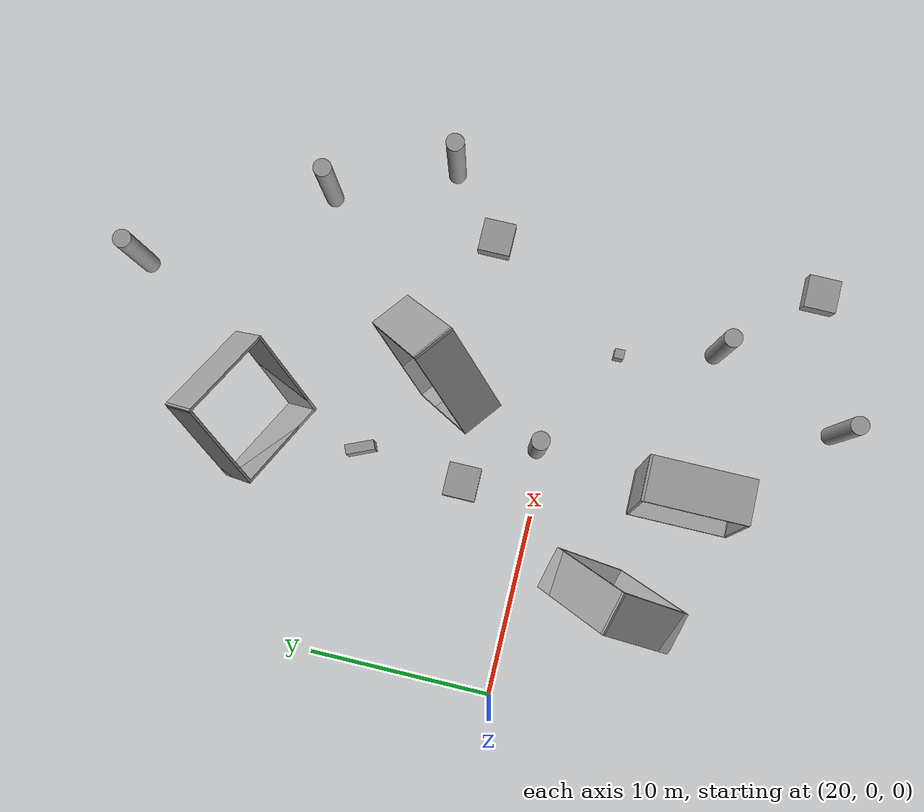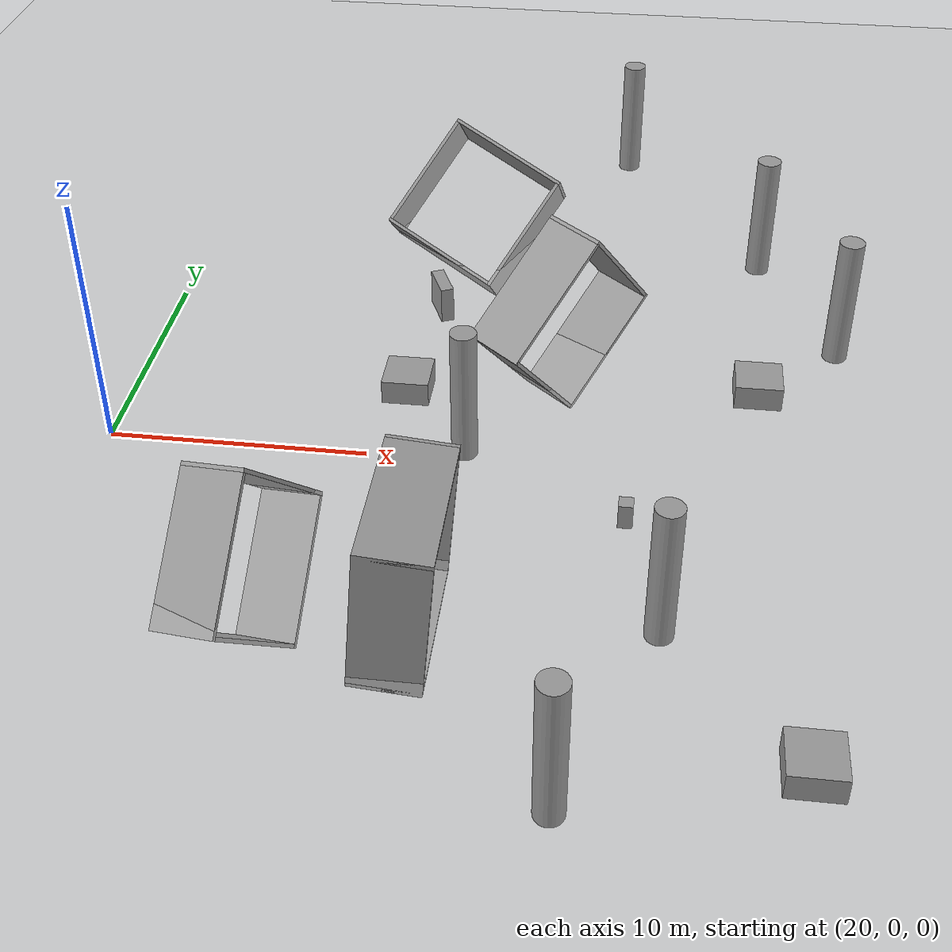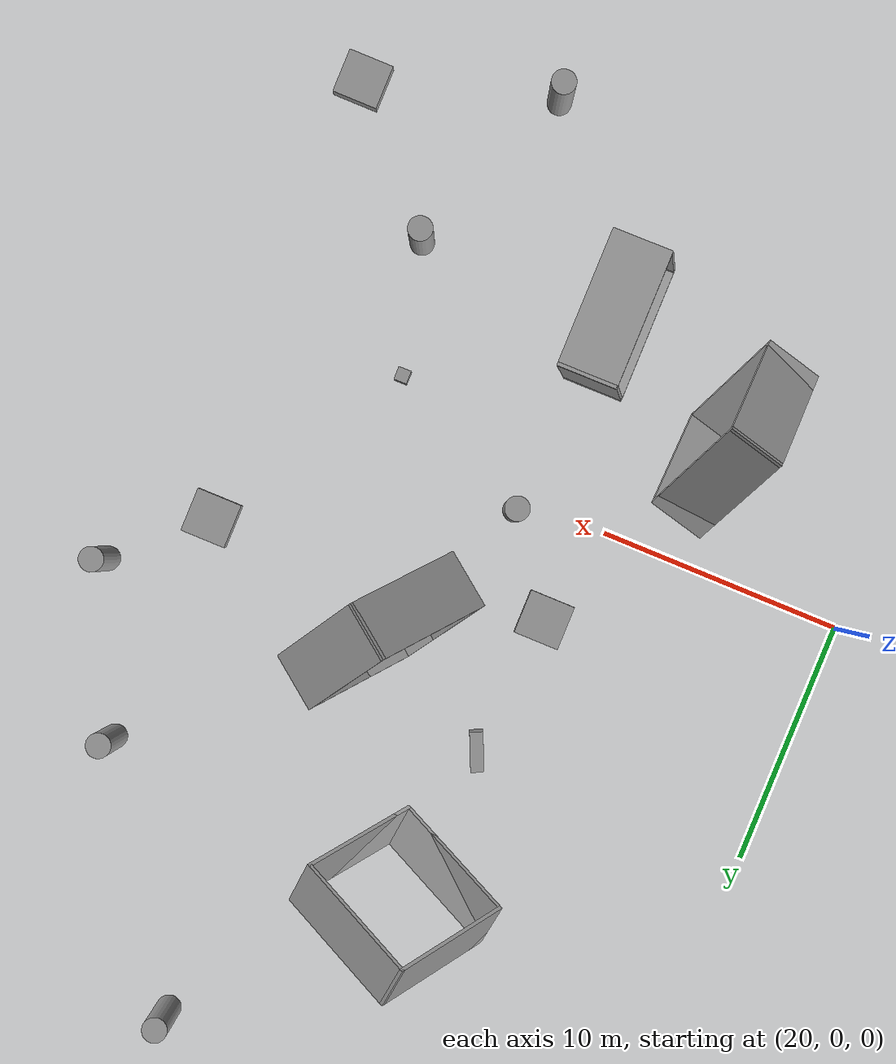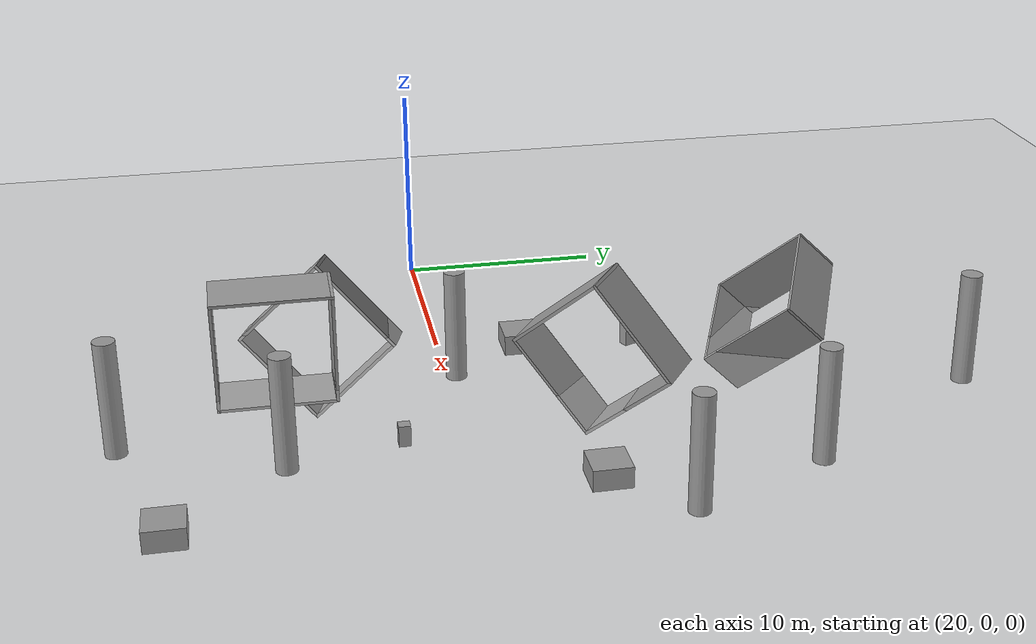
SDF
<sdf version="1.6">
 <world name="default">
  <model name="ground_plane">
   <static>1</static>
   <link name="link">
    <collision name="collision">
     <geometry><plane><normal>0 0 1</normal><size>100 100</size></plane></geometry>
     <surface><friction><ode><mu>100</mu><mu2>50</mu2></ode></friction></surface>
    </collision>
    <visual name="visual">
     <cast_shadows>0</cast_shadows>
     <geometry><plane><normal>0 0 1</normal><size>100 100</size></plane></geometry>
     <material>
      <script><uri>file://media/materials/scripts/gazebo.material</uri><name>Gazebo/Grey</name></script>
     </material>
    </visual>
   </link>
  </model>
  <model name="unit_box_clone_clone_1">
   <pose>31.4556 9.98516 0.788235 -0 -0 -2.72542</pose>
   <link name="link">
    <inertial>
     <mass>1</mass>
     <inertia>
      <ixx>0.166667</ixx>
      <ixy>0</ixy>
      <ixz>0</ixz>
      <iyy>0.166667</iyy>
      <iyz>0</iyz>
      <izz>0.166667</izz>
     </inertia>
    </inertial>
    <collision name="collision"><geometry><box><size>0.539862 1.60938 1.57647</size></box></geometry></collision>
    <visual name="visual">
     <geometry><box><size>0.539862 1.60938 1.57647</size></box></geometry>
     <material>
      <script><name>Gazebo/Grey</name><uri>file://media/materials/scripts/gazebo.material</uri></script>
     </material>
    </visual>
   </link>
  </model>
  <model name="vRoom_clone_3_clone_clone_9">
   <link name="Wall_0">
    <pose>-2.8 -0 -1e-06 -0 -0 -1.5708</pose>
    <velocity_decay><linear>0</linear><angular>0</angular></velocity_decay>
    <visual name="Wall_0_Visual">
     <pose>0 0 1.25 0 -0 0</pose>
     <geometry><box><size>5.75 0.15 2.5</size></box></geometry>
     <material>
      <script><uri>file://media/materials/scripts/gazebo.material</uri><name>Gazebo/Grey</name></script>
      <ambient>1 1 1 1</ambient>
     </material>
    </visual>
    <collision name="Wall_0_Collision">
     <pose>0 0 1.25 0 -0 0</pose>
     <geometry><box><size>5.75 0.15 2.5</size></box></geometry>
     <surface>
      <friction>
       <ode><mu>1</mu><mu2>1</mu2><fdir1>0 0 0</fdir1><slip1>0</slip1><slip2>0</slip2></ode>
       <torsional>
        <coefficient>1</coefficient>
        <patch_radius>0</patch_radius>
        <surface_radius>0</surface_radius>
        <use_patch_radius>1</use_patch_radius>
        <ode><slip>0</slip></ode>
       </torsional>
      </friction>
      <bounce><restitution_coefficient>0</restitution_coefficient><threshold>1e+06</threshold></bounce>
      <contact>
       <collide_without_contact>0</collide_without_contact>
       <collide_without_contact_bitmask>1</collide_without_contact_bitmask>
       <collide_bitmask>1</collide_bitmask>
       <ode>
        <soft_cfm>0</soft_cfm>
        <soft_erp>0.2</soft_erp>
        <kp>1e+13</kp>
        <kd>1</kd>
        <max_vel>0.01</max_vel>
        <min_depth>0</min_depth>
       </ode>
       <bullet>
        <split_impulse>1</split_impulse>
        <split_impulse_penetration_threshold>-0.01</split_impulse_penetration_threshold>
        <soft_cfm>0</soft_cfm>
        <soft_erp>0.2</soft_erp>
        <kp>1e+13</kp>
        <kd>1</kd>
       </bullet>
      </contact>
     </surface>
    </collision>
   </link>
   <link name="Wall_1">
    <pose>2e-06 -2.8 2e-06 0 -0 0</pose>
    <velocity_decay><linear>0</linear><angular>0</angular></velocity_decay>
    <visual name="Wall_1_Visual">
     <pose>0 0 1.25 0 -0 0</pose>
     <geometry><box><size>5.75 0.15 2.5</size></box></geometry>
     <material>
      <script><uri>file://media/materials/scripts/gazebo.material</uri><name>Gazebo/Grey</name></script>
      <ambient>1 1 1 1</ambient>
     </material>
    </visual>
    <collision name="Wall_1_Collision">
     <pose>0 0 1.25 0 -0 0</pose>
     <geometry><box><size>5.75 0.15 2.5</size></box></geometry>
     <surface>
      <friction>
       <ode><mu>1</mu><mu2>1</mu2><fdir1>0 0 0</fdir1><slip1>0</slip1><slip2>0</slip2></ode>
       <torsional>
        <coefficient>1</coefficient>
        <patch_radius>0</patch_radius>
        <surface_radius>0</surface_radius>
        <use_patch_radius>1</use_patch_radius>
        <ode><slip>0</slip></ode>
       </torsional>
      </friction>
      <bounce><restitution_coefficient>0</restitution_coefficient><threshold>1e+06</threshold></bounce>
      <contact>
       <collide_without_contact>0</collide_without_contact>
       <collide_without_contact_bitmask>1</collide_without_contact_bitmask>
       <collide_bitmask>1</collide_bitmask>
       <ode>
        <soft_cfm>0</soft_cfm>
        <soft_erp>0.2</soft_erp>
        <kp>1e+13</kp>
        <kd>1</kd>
        <max_vel>0.01</max_vel>
        <min_depth>0</min_depth>
       </ode>
       <bullet>
        <split_impulse>1</split_impulse>
        <split_impulse_penetration_threshold>-0.01</split_impulse_penetration_threshold>
        <soft_cfm>0</soft_cfm>
        <soft_erp>0.2</soft_erp>
        <kp>1e+13</kp>
        <kd>1</kd>
       </bullet>
      </contact>
     </surface>
    </collision>
   </link>
   <link name="Wall_2">
    <pose>2.8 0 1e-06 0 -0 1.5708</pose>
    <velocity_decay><linear>0</linear><angular>0</angular></velocity_decay>
    <visual name="Wall_2_Visual">
     <pose>0 0 1.25 0 -0 0</pose>
     <geometry><box><size>5.75 0.15 2.5</size></box></geometry>
     <material>
      <script><uri>file://media/materials/scripts/gazebo.material</uri><name>Gazebo/Grey</name></script>
      <ambient>1 1 1 1</ambient>
     </material>
    </visual>
    <collision name="Wall_2_Collision">
     <pose>0 0 1.25 0 -0 0</pose>
     <geometry><box><size>5.75 0.15 2.5</size></box></geometry>
     <surface>
      <friction>
       <ode><mu>1</mu><mu2>1</mu2><fdir1>0 0 0</fdir1><slip1>0</slip1><slip2>0</slip2></ode>
       <torsional>
        <coefficient>1</coefficient>
        <patch_radius>0</patch_radius>
        <surface_radius>0</surface_radius>
        <use_patch_radius>1</use_patch_radius>
        <ode><slip>0</slip></ode>
       </torsional>
      </friction>
      <bounce><restitution_coefficient>0</restitution_coefficient><threshold>1e+06</threshold></bounce>
      <contact>
       <collide_without_contact>0</collide_without_contact>
       <collide_without_contact_bitmask>1</collide_without_contact_bitmask>
       <collide_bitmask>1</collide_bitmask>
       <ode>
        <soft_cfm>0</soft_cfm>
        <soft_erp>0.2</soft_erp>
        <kp>1e+13</kp>
        <kd>1</kd>
        <max_vel>0.01</max_vel>
        <min_depth>0</min_depth>
       </ode>
       <bullet>
        <split_impulse>1</split_impulse>
        <split_impulse_penetration_threshold>-0.01</split_impulse_penetration_threshold>
        <soft_cfm>0</soft_cfm>
        <soft_erp>0.2</soft_erp>
        <kp>1e+13</kp>
        <kd>1</kd>
       </bullet>
      </contact>
     </surface>
    </collision>
   </link>
   <link name="Wall_3">
    <pose>-2e-06 2.8 -2e-06 0 -0 3.14159</pose>
    <velocity_decay><linear>0</linear><angular>0</angular></velocity_decay>
    <visual name="Wall_3_Visual">
     <pose>0 0 1.25 0 -0 0</pose>
     <geometry><box><size>5.75 0.15 2.5</size></box></geometry>
     <material>
      <script><uri>file://media/materials/scripts/gazebo.material</uri><name>Gazebo/Grey</name></script>
      <ambient>1 1 1 1</ambient>
     </material>
    </visual>
    <collision name="Wall_3_Collision">
     <pose>0 0 1.25 0 -0 0</pose>
     <geometry><box><size>5.75 0.15 2.5</size></box></geometry>
     <surface>
      <friction>
       <ode><mu>1</mu><mu2>1</mu2><fdir1>0 0 0</fdir1><slip1>0</slip1><slip2>0</slip2></ode>
       <torsional>
        <coefficient>1</coefficient>
        <patch_radius>0</patch_radius>
        <surface_radius>0</surface_radius>
        <use_patch_radius>1</use_patch_radius>
        <ode><slip>0</slip></ode>
       </torsional>
      </friction>
      <bounce><restitution_coefficient>0</restitution_coefficient><threshold>1e+06</threshold></bounce>
      <contact>
       <collide_without_contact>0</collide_without_contact>
       <collide_without_contact_bitmask>1</collide_without_contact_bitmask>
       <collide_bitmask>1</collide_bitmask>
       <ode>
        <soft_cfm>0</soft_cfm>
        <soft_erp>0.2</soft_erp>
        <kp>1e+13</kp>
        <kd>1</kd>
        <max_vel>0.01</max_vel>
        <min_depth>0</min_depth>
       </ode>
       <bullet>
        <split_impulse>1</split_impulse>
        <split_impulse_penetration_threshold>-0.01</split_impulse_penetration_threshold>
        <soft_cfm>0</soft_cfm>
        <soft_erp>0.2</soft_erp>
        <kp>1e+13</kp>
        <kd>1</kd>
       </bullet>
      </contact>
     </surface>
    </collision>
   </link>
   <static>1</static>
   <pose>34.1246 -8.07118 2.16038 4e-06 -1.47998 -7e-06</pose>
  </model>
  <model name="vRoom_clone_3_clone_clone_9_clone">
   <link name="Wall_0">
    <pose>-2.8 -0 -1e-06 -0 -0 -1.5708</pose>
    <velocity_decay><linear>0</linear><angular>0</angular></velocity_decay>
    <visual name="Wall_0_Visual">
     <pose>0 0 1.25 0 -0 0</pose>
     <geometry><box><size>5.75 0.15 2.5</size></box></geometry>
     <material>
      <script><uri>file://media/materials/scripts/gazebo.material</uri><name>Gazebo/Grey</name></script>
      <ambient>1 1 1 1</ambient>
     </material>
    </visual>
    <collision name="Wall_0_Collision">
     <pose>0 0 1.25 0 -0 0</pose>
     <geometry><box><size>5.75 0.15 2.5</size></box></geometry>
     <surface>
      <friction>
       <ode><mu>1</mu><mu2>1</mu2><fdir1>0 0 0</fdir1><slip1>0</slip1><slip2>0</slip2></ode>
       <torsional>
        <coefficient>1</coefficient>
        <patch_radius>0</patch_radius>
        <surface_radius>0</surface_radius>
        <use_patch_radius>1</use_patch_radius>
        <ode><slip>0</slip></ode>
       </torsional>
      </friction>
      <bounce><restitution_coefficient>0</restitution_coefficient><threshold>1e+06</threshold></bounce>
      <contact>
       <collide_without_contact>0</collide_without_contact>
       <collide_without_contact_bitmask>1</collide_without_contact_bitmask>
       <collide_bitmask>1</collide_bitmask>
       <ode>
        <soft_cfm>0</soft_cfm>
        <soft_erp>0.2</soft_erp>
        <kp>1e+13</kp>
        <kd>1</kd>
        <max_vel>0.01</max_vel>
        <min_depth>0</min_depth>
       </ode>
       <bullet>
        <split_impulse>1</split_impulse>
        <split_impulse_penetration_threshold>-0.01</split_impulse_penetration_threshold>
        <soft_cfm>0</soft_cfm>
        <soft_erp>0.2</soft_erp>
        <kp>1e+13</kp>
        <kd>1</kd>
       </bullet>
      </contact>
     </surface>
    </collision>
   </link>
   <link name="Wall_1">
    <pose>2e-06 -2.8 2e-06 0 -0 0</pose>
    <velocity_decay><linear>0</linear><angular>0</angular></velocity_decay>
    <visual name="Wall_1_Visual">
     <pose>0 0 1.25 0 -0 0</pose>
     <geometry><box><size>5.75 0.15 2.5</size></box></geometry>
     <material>
      <script><uri>file://media/materials/scripts/gazebo.material</uri><name>Gazebo/Grey</name></script>
      <ambient>1 1 1 1</ambient>
     </material>
    </visual>
    <collision name="Wall_1_Collision">
     <pose>0 0 1.25 0 -0 0</pose>
     <geometry><box><size>5.75 0.15 2.5</size></box></geometry>
     <surface>
      <friction>
       <ode><mu>1</mu><mu2>1</mu2><fdir1>0 0 0</fdir1><slip1>0</slip1><slip2>0</slip2></ode>
       <torsional>
        <coefficient>1</coefficient>
        <patch_radius>0</patch_radius>
        <surface_radius>0</surface_radius>
        <use_patch_radius>1</use_patch_radius>
        <ode><slip>0</slip></ode>
       </torsional>
      </friction>
      <bounce><restitution_coefficient>0</restitution_coefficient><threshold>1e+06</threshold></bounce>
      <contact>
       <collide_without_contact>0</collide_without_contact>
       <collide_without_contact_bitmask>1</collide_without_contact_bitmask>
       <collide_bitmask>1</collide_bitmask>
       <ode>
        <soft_cfm>0</soft_cfm>
        <soft_erp>0.2</soft_erp>
        <kp>1e+13</kp>
        <kd>1</kd>
        <max_vel>0.01</max_vel>
        <min_depth>0</min_depth>
       </ode>
       <bullet>
        <split_impulse>1</split_impulse>
        <split_impulse_penetration_threshold>-0.01</split_impulse_penetration_threshold>
        <soft_cfm>0</soft_cfm>
        <soft_erp>0.2</soft_erp>
        <kp>1e+13</kp>
        <kd>1</kd>
       </bullet>
      </contact>
     </surface>
    </collision>
   </link>
   <link name="Wall_2">
    <pose>2.8 0 1e-06 0 -0 1.5708</pose>
    <velocity_decay><linear>0</linear><angular>0</angular></velocity_decay>
    <visual name="Wall_2_Visual">
     <pose>0 0 1.25 0 -0 0</pose>
     <geometry><box><size>5.75 0.15 2.5</size></box></geometry>
     <material>
      <script><uri>file://media/materials/scripts/gazebo.material</uri><name>Gazebo/Grey</name></script>
      <ambient>1 1 1 1</ambient>
     </material>
    </visual>
    <collision name="Wall_2_Collision">
     <pose>0 0 1.25 0 -0 0</pose>
     <geometry><box><size>5.75 0.15 2.5</size></box></geometry>
     <surface>
      <friction>
       <ode><mu>1</mu><mu2>1</mu2><fdir1>0 0 0</fdir1><slip1>0</slip1><slip2>0</slip2></ode>
       <torsional>
        <coefficient>1</coefficient>
        <patch_radius>0</patch_radius>
        <surface_radius>0</surface_radius>
        <use_patch_radius>1</use_patch_radius>
        <ode><slip>0</slip></ode>
       </torsional>
      </friction>
      <bounce><restitution_coefficient>0</restitution_coefficient><threshold>1e+06</threshold></bounce>
      <contact>
       <collide_without_contact>0</collide_without_contact>
       <collide_without_contact_bitmask>1</collide_without_contact_bitmask>
       <collide_bitmask>1</collide_bitmask>
       <ode>
        <soft_cfm>0</soft_cfm>
        <soft_erp>0.2</soft_erp>
        <kp>1e+13</kp>
        <kd>1</kd>
        <max_vel>0.01</max_vel>
        <min_depth>0</min_depth>
       </ode>
       <bullet>
        <split_impulse>1</split_impulse>
        <split_impulse_penetration_threshold>-0.01</split_impulse_penetration_threshold>
        <soft_cfm>0</soft_cfm>
        <soft_erp>0.2</soft_erp>
        <kp>1e+13</kp>
        <kd>1</kd>
       </bullet>
      </contact>
     </surface>
    </collision>
   </link>
   <link name="Wall_3">
    <pose>-2e-06 2.8 -2e-06 0 -0 3.14159</pose>
    <velocity_decay><linear>0</linear><angular>0</angular></velocity_decay>
    <visual name="Wall_3_Visual">
     <pose>0 0 1.25 0 -0 0</pose>
     <geometry><box><size>5.75 0.15 2.5</size></box></geometry>
     <material>
      <script><uri>file://media/materials/scripts/gazebo.material</uri><name>Gazebo/Grey</name></script>
      <ambient>1 1 1 1</ambient>
     </material>
    </visual>
    <collision name="Wall_3_Collision">
     <pose>0 0 1.25 0 -0 0</pose>
     <geometry><box><size>5.75 0.15 2.5</size></box></geometry>
     <surface>
      <friction>
       <ode><mu>1</mu><mu2>1</mu2><fdir1>0 0 0</fdir1><slip1>0</slip1><slip2>0</slip2></ode>
       <torsional>
        <coefficient>1</coefficient>
        <patch_radius>0</patch_radius>
        <surface_radius>0</surface_radius>
        <use_patch_radius>1</use_patch_radius>
        <ode><slip>0</slip></ode>
       </torsional>
      </friction>
      <bounce><restitution_coefficient>0</restitution_coefficient><threshold>1e+06</threshold></bounce>
      <contact>
       <collide_without_contact>0</collide_without_contact>
       <collide_without_contact_bitmask>1</collide_without_contact_bitmask>
       <collide_bitmask>1</collide_bitmask>
       <ode>
        <soft_cfm>0</soft_cfm>
        <soft_erp>0.2</soft_erp>
        <kp>1e+13</kp>
        <kd>1</kd>
        <max_vel>0.01</max_vel>
        <min_depth>0</min_depth>
       </ode>
       <bullet>
        <split_impulse>1</split_impulse>
        <split_impulse_penetration_threshold>-0.01</split_impulse_penetration_threshold>
        <soft_cfm>0</soft_cfm>
        <soft_erp>0.2</soft_erp>
        <kp>1e+13</kp>
        <kd>1</kd>
       </bullet>
      </contact>
     </surface>
    </collision>
   </link>
   <static>1</static>
   <pose>37.7929 6.19167 2.16038 1.45974 -0.860248 -2.1368</pose>
  </model>
  <model name="vRoom_clone_3_clone_clone_9_clone_clone">
   <link name="Wall_0">
    <pose>-2.8 -0 -1e-06 -0 -0 -1.5708</pose>
    <velocity_decay><linear>0</linear><angular>0</angular></velocity_decay>
    <visual name="Wall_0_Visual">
     <pose>0 0 1.25 0 -0 0</pose>
     <geometry><box><size>5.75 0.15 2.5</size></box></geometry>
     <material>
      <script><uri>file://media/materials/scripts/gazebo.material</uri><name>Gazebo/Grey</name></script>
      <ambient>1 1 1 1</ambient>
     </material>
    </visual>
    <collision name="Wall_0_Collision">
     <pose>0 0 1.25 0 -0 0</pose>
     <geometry><box><size>5.75 0.15 2.5</size></box></geometry>
     <surface>
      <friction>
       <ode><mu>1</mu><mu2>1</mu2><fdir1>0 0 0</fdir1><slip1>0</slip1><slip2>0</slip2></ode>
       <torsional>
        <coefficient>1</coefficient>
        <patch_radius>0</patch_radius>
        <surface_radius>0</surface_radius>
        <use_patch_radius>1</use_patch_radius>
        <ode><slip>0</slip></ode>
       </torsional>
      </friction>
      <bounce><restitution_coefficient>0</restitution_coefficient><threshold>1e+06</threshold></bounce>
      <contact>
       <collide_without_contact>0</collide_without_contact>
       <collide_without_contact_bitmask>1</collide_without_contact_bitmask>
       <collide_bitmask>1</collide_bitmask>
       <ode>
        <soft_cfm>0</soft_cfm>
        <soft_erp>0.2</soft_erp>
        <kp>1e+13</kp>
        <kd>1</kd>
        <max_vel>0.01</max_vel>
        <min_depth>0</min_depth>
       </ode>
       <bullet>
        <split_impulse>1</split_impulse>
        <split_impulse_penetration_threshold>-0.01</split_impulse_penetration_threshold>
        <soft_cfm>0</soft_cfm>
        <soft_erp>0.2</soft_erp>
        <kp>1e+13</kp>
        <kd>1</kd>
       </bullet>
      </contact>
     </surface>
    </collision>
   </link>
   <link name="Wall_1">
    <pose>2e-06 -2.8 2e-06 0 -0 0</pose>
    <velocity_decay><linear>0</linear><angular>0</angular></velocity_decay>
    <visual name="Wall_1_Visual">
     <pose>0 0 1.25 0 -0 0</pose>
     <geometry><box><size>5.75 0.15 2.5</size></box></geometry>
     <material>
      <script><uri>file://media/materials/scripts/gazebo.material</uri><name>Gazebo/Grey</name></script>
      <ambient>1 1 1 1</ambient>
     </material>
    </visual>
    <collision name="Wall_1_Collision">
     <pose>0 0 1.25 0 -0 0</pose>
     <geometry><box><size>5.75 0.15 2.5</size></box></geometry>
     <surface>
      <friction>
       <ode><mu>1</mu><mu2>1</mu2><fdir1>0 0 0</fdir1><slip1>0</slip1><slip2>0</slip2></ode>
       <torsional>
        <coefficient>1</coefficient>
        <patch_radius>0</patch_radius>
        <surface_radius>0</surface_radius>
        <use_patch_radius>1</use_patch_radius>
        <ode><slip>0</slip></ode>
       </torsional>
      </friction>
      <bounce><restitution_coefficient>0</restitution_coefficient><threshold>1e+06</threshold></bounce>
      <contact>
       <collide_without_contact>0</collide_without_contact>
       <collide_without_contact_bitmask>1</collide_without_contact_bitmask>
       <collide_bitmask>1</collide_bitmask>
       <ode>
        <soft_cfm>0</soft_cfm>
        <soft_erp>0.2</soft_erp>
        <kp>1e+13</kp>
        <kd>1</kd>
        <max_vel>0.01</max_vel>
        <min_depth>0</min_depth>
       </ode>
       <bullet>
        <split_impulse>1</split_impulse>
        <split_impulse_penetration_threshold>-0.01</split_impulse_penetration_threshold>
        <soft_cfm>0</soft_cfm>
        <soft_erp>0.2</soft_erp>
        <kp>1e+13</kp>
        <kd>1</kd>
       </bullet>
      </contact>
     </surface>
    </collision>
   </link>
   <link name="Wall_2">
    <pose>2.8 0 1e-06 0 -0 1.5708</pose>
    <velocity_decay><linear>0</linear><angular>0</angular></velocity_decay>
    <visual name="Wall_2_Visual">
     <pose>0 0 1.25 0 -0 0</pose>
     <geometry><box><size>5.75 0.15 2.5</size></box></geometry>
     <material>
      <script><uri>file://media/materials/scripts/gazebo.material</uri><name>Gazebo/Grey</name></script>
      <ambient>1 1 1 1</ambient>
     </material>
    </visual>
    <collision name="Wall_2_Collision">
     <pose>0 0 1.25 0 -0 0</pose>
     <geometry><box><size>5.75 0.15 2.5</size></box></geometry>
     <surface>
      <friction>
       <ode><mu>1</mu><mu2>1</mu2><fdir1>0 0 0</fdir1><slip1>0</slip1><slip2>0</slip2></ode>
       <torsional>
        <coefficient>1</coefficient>
        <patch_radius>0</patch_radius>
        <surface_radius>0</surface_radius>
        <use_patch_radius>1</use_patch_radius>
        <ode><slip>0</slip></ode>
       </torsional>
      </friction>
      <bounce><restitution_coefficient>0</restitution_coefficient><threshold>1e+06</threshold></bounce>
      <contact>
       <collide_without_contact>0</collide_without_contact>
       <collide_without_contact_bitmask>1</collide_without_contact_bitmask>
       <collide_bitmask>1</collide_bitmask>
       <ode>
        <soft_cfm>0</soft_cfm>
        <soft_erp>0.2</soft_erp>
        <kp>1e+13</kp>
        <kd>1</kd>
        <max_vel>0.01</max_vel>
        <min_depth>0</min_depth>
       </ode>
       <bullet>
        <split_impulse>1</split_impulse>
        <split_impulse_penetration_threshold>-0.01</split_impulse_penetration_threshold>
        <soft_cfm>0</soft_cfm>
        <soft_erp>0.2</soft_erp>
        <kp>1e+13</kp>
        <kd>1</kd>
       </bullet>
      </contact>
     </surface>
    </collision>
   </link>
   <link name="Wall_3">
    <pose>-2e-06 2.8 -2e-06 0 -0 3.14159</pose>
    <velocity_decay><linear>0</linear><angular>0</angular></velocity_decay>
    <visual name="Wall_3_Visual">
     <pose>0 0 1.25 0 -0 0</pose>
     <geometry><box><size>5.75 0.15 2.5</size></box></geometry>
     <material>
      <script><uri>file://media/materials/scripts/gazebo.material</uri><name>Gazebo/Grey</name></script>
      <ambient>1 1 1 1</ambient>
     </material>
    </visual>
    <collision name="Wall_3_Collision">
     <pose>0 0 1.25 0 -0 0</pose>
     <geometry><box><size>5.75 0.15 2.5</size></box></geometry>
     <surface>
      <friction>
       <ode><mu>1</mu><mu2>1</mu2><fdir1>0 0 0</fdir1><slip1>0</slip1><slip2>0</slip2></ode>
       <torsional>
        <coefficient>1</coefficient>
        <patch_radius>0</patch_radius>
        <surface_radius>0</surface_radius>
        <use_patch_radius>1</use_patch_radius>
        <ode><slip>0</slip></ode>
       </torsional>
      </friction>
      <bounce><restitution_coefficient>0</restitution_coefficient><threshold>1e+06</threshold></bounce>
      <contact>
       <collide_without_contact>0</collide_without_contact>
       <collide_without_contact_bitmask>1</collide_without_contact_bitmask>
       <collide_bitmask>1</collide_bitmask>
       <ode>
        <soft_cfm>0</soft_cfm>
        <soft_erp>0.2</soft_erp>
        <kp>1e+13</kp>
        <kd>1</kd>
        <max_vel>0.01</max_vel>
        <min_depth>0</min_depth>
       </ode>
       <bullet>
        <split_impulse>1</split_impulse>
        <split_impulse_penetration_threshold>-0.01</split_impulse_penetration_threshold>
        <soft_cfm>0</soft_cfm>
        <soft_erp>0.2</soft_erp>
        <kp>1e+13</kp>
        <kd>1</kd>
       </bullet>
      </contact>
     </surface>
    </collision>
   </link>
   <static>1</static>
   <pose>32.0507 15.9163 2.16037 2.38794 -0.326145 2.72159</pose>
  </model>
  <model name="vRoom_clone_3_clone_clone_9_clone_2">
   <link name="Wall_0">
    <pose>-2.8 -0 -1e-06 -0 -0 -1.5708</pose>
    <velocity_decay><linear>0</linear><angular>0</angular></velocity_decay>
    <visual name="Wall_0_Visual">
     <pose>0 0 1.25 0 -0 0</pose>
     <geometry><box><size>5.75 0.15 2.5</size></box></geometry>
     <material>
      <script><uri>file://media/materials/scripts/gazebo.material</uri><name>Gazebo/Grey</name></script>
      <ambient>1 1 1 1</ambient>
     </material>
    </visual>
    <collision name="Wall_0_Collision">
     <pose>0 0 1.25 0 -0 0</pose>
     <geometry><box><size>5.75 0.15 2.5</size></box></geometry>
     <surface>
      <friction>
       <ode><mu>1</mu><mu2>1</mu2><fdir1>0 0 0</fdir1><slip1>0</slip1><slip2>0</slip2></ode>
       <torsional>
        <coefficient>1</coefficient>
        <patch_radius>0</patch_radius>
        <surface_radius>0</surface_radius>
        <use_patch_radius>1</use_patch_radius>
        <ode><slip>0</slip></ode>
       </torsional>
      </friction>
      <bounce><restitution_coefficient>0</restitution_coefficient><threshold>1e+06</threshold></bounce>
      <contact>
       <collide_without_contact>0</collide_without_contact>
       <collide_without_contact_bitmask>1</collide_without_contact_bitmask>
       <collide_bitmask>1</collide_bitmask>
       <ode>
        <soft_cfm>0</soft_cfm>
        <soft_erp>0.2</soft_erp>
        <kp>1e+13</kp>
        <kd>1</kd>
        <max_vel>0.01</max_vel>
        <min_depth>0</min_depth>
       </ode>
       <bullet>
        <split_impulse>1</split_impulse>
        <split_impulse_penetration_threshold>-0.01</split_impulse_penetration_threshold>
        <soft_cfm>0</soft_cfm>
        <soft_erp>0.2</soft_erp>
        <kp>1e+13</kp>
        <kd>1</kd>
       </bullet>
      </contact>
     </surface>
    </collision>
   </link>
   <link name="Wall_1">
    <pose>2e-06 -2.8 2e-06 0 -0 0</pose>
    <velocity_decay><linear>0</linear><angular>0</angular></velocity_decay>
    <visual name="Wall_1_Visual">
     <pose>0 0 1.25 0 -0 0</pose>
     <geometry><box><size>5.75 0.15 2.5</size></box></geometry>
     <material>
      <script><uri>file://media/materials/scripts/gazebo.material</uri><name>Gazebo/Grey</name></script>
      <ambient>1 1 1 1</ambient>
     </material>
    </visual>
    <collision name="Wall_1_Collision">
     <pose>0 0 1.25 0 -0 0</pose>
     <geometry><box><size>5.75 0.15 2.5</size></box></geometry>
     <surface>
      <friction>
       <ode><mu>1</mu><mu2>1</mu2><fdir1>0 0 0</fdir1><slip1>0</slip1><slip2>0</slip2></ode>
       <torsional>
        <coefficient>1</coefficient>
        <patch_radius>0</patch_radius>
        <surface_radius>0</surface_radius>
        <use_patch_radius>1</use_patch_radius>
        <ode><slip>0</slip></ode>
       </torsional>
      </friction>
      <bounce><restitution_coefficient>0</restitution_coefficient><threshold>1e+06</threshold></bounce>
      <contact>
       <collide_without_contact>0</collide_without_contact>
       <collide_without_contact_bitmask>1</collide_without_contact_bitmask>
       <collide_bitmask>1</collide_bitmask>
       <ode>
        <soft_cfm>0</soft_cfm>
        <soft_erp>0.2</soft_erp>
        <kp>1e+13</kp>
        <kd>1</kd>
        <max_vel>0.01</max_vel>
        <min_depth>0</min_depth>
       </ode>
       <bullet>
        <split_impulse>1</split_impulse>
        <split_impulse_penetration_threshold>-0.01</split_impulse_penetration_threshold>
        <soft_cfm>0</soft_cfm>
        <soft_erp>0.2</soft_erp>
        <kp>1e+13</kp>
        <kd>1</kd>
       </bullet>
      </contact>
     </surface>
    </collision>
   </link>
   <link name="Wall_2">
    <pose>2.8 0 1e-06 0 -0 1.5708</pose>
    <velocity_decay><linear>0</linear><angular>0</angular></velocity_decay>
    <visual name="Wall_2_Visual">
     <pose>0 0 1.25 0 -0 0</pose>
     <geometry><box><size>5.75 0.15 2.5</size></box></geometry>
     <material>
      <script><uri>file://media/materials/scripts/gazebo.material</uri><name>Gazebo/Grey</name></script>
      <ambient>1 1 1 1</ambient>
     </material>
    </visual>
    <collision name="Wall_2_Collision">
     <pose>0 0 1.25 0 -0 0</pose>
     <geometry><box><size>5.75 0.15 2.5</size></box></geometry>
     <surface>
      <friction>
       <ode><mu>1</mu><mu2>1</mu2><fdir1>0 0 0</fdir1><slip1>0</slip1><slip2>0</slip2></ode>
       <torsional>
        <coefficient>1</coefficient>
        <patch_radius>0</patch_radius>
        <surface_radius>0</surface_radius>
        <use_patch_radius>1</use_patch_radius>
        <ode><slip>0</slip></ode>
       </torsional>
      </friction>
      <bounce><restitution_coefficient>0</restitution_coefficient><threshold>1e+06</threshold></bounce>
      <contact>
       <collide_without_contact>0</collide_without_contact>
       <collide_without_contact_bitmask>1</collide_without_contact_bitmask>
       <collide_bitmask>1</collide_bitmask>
       <ode>
        <soft_cfm>0</soft_cfm>
        <soft_erp>0.2</soft_erp>
        <kp>1e+13</kp>
        <kd>1</kd>
        <max_vel>0.01</max_vel>
        <min_depth>0</min_depth>
       </ode>
       <bullet>
        <split_impulse>1</split_impulse>
        <split_impulse_penetration_threshold>-0.01</split_impulse_penetration_threshold>
        <soft_cfm>0</soft_cfm>
        <soft_erp>0.2</soft_erp>
        <kp>1e+13</kp>
        <kd>1</kd>
       </bullet>
      </contact>
     </surface>
    </collision>
   </link>
   <link name="Wall_3">
    <pose>-2e-06 2.8 -2e-06 0 -0 3.14159</pose>
    <velocity_decay><linear>0</linear><angular>0</angular></velocity_decay>
    <visual name="Wall_3_Visual">
     <pose>0 0 1.25 0 -0 0</pose>
     <geometry><box><size>5.75 0.15 2.5</size></box></geometry>
     <material>
      <script><uri>file://media/materials/scripts/gazebo.material</uri><name>Gazebo/Grey</name></script>
      <ambient>1 1 1 1</ambient>
     </material>
    </visual>
    <collision name="Wall_3_Collision">
     <pose>0 0 1.25 0 -0 0</pose>
     <geometry><box><size>5.75 0.15 2.5</size></box></geometry>
     <surface>
      <friction>
       <ode><mu>1</mu><mu2>1</mu2><fdir1>0 0 0</fdir1><slip1>0</slip1><slip2>0</slip2></ode>
       <torsional>
        <coefficient>1</coefficient>
        <patch_radius>0</patch_radius>
        <surface_radius>0</surface_radius>
        <use_patch_radius>1</use_patch_radius>
        <ode><slip>0</slip></ode>
       </torsional>
      </friction>
      <bounce><restitution_coefficient>0</restitution_coefficient><threshold>1e+06</threshold></bounce>
      <contact>
       <collide_without_contact>0</collide_without_contact>
       <collide_without_contact_bitmask>1</collide_without_contact_bitmask>
       <collide_bitmask>1</collide_bitmask>
       <ode>
        <soft_cfm>0</soft_cfm>
        <soft_erp>0.2</soft_erp>
        <kp>1e+13</kp>
        <kd>1</kd>
        <max_vel>0.01</max_vel>
        <min_depth>0</min_depth>
       </ode>
       <bullet>
        <split_impulse>1</split_impulse>
        <split_impulse_penetration_threshold>-0.01</split_impulse_penetration_threshold>
        <soft_cfm>0</soft_cfm>
        <soft_erp>0.2</soft_erp>
        <kp>1e+13</kp>
        <kd>1</kd>
       </bullet>
      </contact>
     </surface>
    </collision>
   </link>
   <static>1</static>
   <pose>27.7206 -5.8322 -0.34899 1.8013 -0.792215 -1.97465</pose>
  </model>
  <model name="unit_cylinder_clone_7_clone_1_clone">
   <pose>33.6858 0.497473 2.75253 0 -0 0.004539</pose>
   <link name="link">
    <inertial>
     <mass>1</mass>
     <inertia><ixx>0.145833</ixx><ixy>0</ixy><ixz>0</ixz><iyy>0.145833</iyy><iyz>0</iyz><izz>0.125</izz></inertia>
    </inertial>
    <collision name="collision">
     <geometry><cylinder><radius>0.5</radius><length>5.50507</length></cylinder></geometry>
    </collision>
    <visual name="visual">
     <geometry><cylinder><radius>0.5</radius><length>5.50507</length></cylinder></geometry>
     <material>
      <script><name>Gazebo/Grey</name><uri>file://media/materials/scripts/gazebo.material</uri></script>
     </material>
    </visual>
   </link>
  </model>
  <model name="unit_cylinder_clone_7_clone_1_clone_0">
   <pose>38.2527 -15.3227 2.75253 0 -0 0.004338</pose>
   <link name="link">
    <inertial>
     <mass>1</mass>
     <inertia><ixx>0.145833</ixx><ixy>0</ixy><ixz>0</ixz><iyy>0.145833</iyy><iyz>0</iyz><izz>0.125</izz></inertia>
    </inertial>
    <collision name="collision">
     <geometry><cylinder><radius>0.5</radius><length>5.50507</length></cylinder></geometry>
    </collision>
    <visual name="visual">
     <geometry><cylinder><radius>0.5</radius><length>5.50507</length></cylinder></geometry>
     <material>
      <script><name>Gazebo/Grey</name><uri>file://media/materials/scripts/gazebo.material</uri></script>
     </material>
    </visual>
   </link>
  </model>
  <model name="unit_cylinder_clone_7_clone_1_clone_1">
   <pose>45.1026 15.0162 2.75253 0 -0 0.004373</pose>
   <link name="link">
    <inertial>
     <mass>1</mass>
     <inertia><ixx>0.145833</ixx><ixy>0</ixy><ixz>0</ixz><iyy>0.145833</iyy><iyz>0</iyz><izz>0.125</izz></inertia>
    </inertial>
    <collision name="collision">
     <geometry><cylinder><radius>0.5</radius><length>5.50507</length></cylinder></geometry>
    </collision>
    <visual name="visual">
     <geometry><cylinder><radius>0.5</radius><length>5.50507</length></cylinder></geometry>
     <material>
      <script><name>Gazebo/Grey</name><uri>file://media/materials/scripts/gazebo.material</uri></script>
     </material>
    </visual>
   </link>
  </model>
  <model name="unit_cylinder_clone_7_clone_1_clone_3">
   <pose>48.076 8.50492 2.75253 0 -0 0.004395</pose>
   <link name="link">
    <inertial>
     <mass>1</mass>
     <inertia><ixx>0.145833</ixx><ixy>0</ixy><ixz>0</ixz><iyy>0.145833</iyy><iyz>0</iyz><izz>0.125</izz></inertia>
    </inertial>
    <collision name="collision">
     <geometry><cylinder><radius>0.5</radius><length>5.50507</length></cylinder></geometry>
    </collision>
    <visual name="visual">
     <geometry><cylinder><radius>0.5</radius><length>5.50507</length></cylinder></geometry>
     <material>
      <script><name>Gazebo/Grey</name><uri>file://media/materials/scripts/gazebo.material</uri></script>
     </material>
    </visual>
   </link>
  </model>
  <model name="unit_cylinder_clone_7_clone_1_clone_4">
   <pose>41.218 -8.02657 2.75253 0 -0 0.004375</pose>
   <link name="link">
    <inertial>
     <mass>1</mass>
     <inertia><ixx>0.145833</ixx><ixy>0</ixy><ixz>0</ixz><iyy>0.145833</iyy><iyz>0</iyz><izz>0.125</izz></inertia>
    </inertial>
    <collision name="collision">
     <geometry><cylinder><radius>0.5</radius><length>5.50507</length></cylinder></geometry>
    </collision>
    <visual name="visual">
     <geometry><cylinder><radius>0.5</radius><length>5.50507</length></cylinder></geometry>
     <material>
      <script><name>Gazebo/Grey</name><uri>file://media/materials/scripts/gazebo.material</uri></script>
     </material>
    </visual>
   </link>
  </model>
  <model name="unit_box_1">
   <pose>39.8908 -2.76568 0.5 0 -0 -1.1e-05</pose>
   <link name="link">
    <inertial>
     <mass>1</mass>
     <inertia>
      <ixx>0.166667</ixx>
      <ixy>0</ixy>
      <ixz>0</ixz>
      <iyy>0.166667</iyy>
      <iyz>0</iyz>
      <izz>0.166667</izz>
     </inertia>
    </inertial>
    <collision name="collision"><geometry><box><size>0.535938 0.550218 1</size></box></geometry></collision>
    <visual name="visual">
     <geometry><box><size>0.535938 0.550218 1</size></box></geometry>
     <material>
      <script><name>Gazebo/Grey</name><uri>file://media/materials/scripts/gazebo.material</uri></script>
     </material>
    </visual>
   </link>
  </model>
  <model name="unit_box_1_clone">
   <pose>30.9413 4.11427 0.499994 -7e-06 0 0</pose>
   <link name="link">
    <inertial>
     <mass>1</mass>
     <inertia>
      <ixx>0.166667</ixx>
      <ixy>0</ixy>
      <ixz>0</ixz>
      <iyy>0.166667</iyy>
      <iyz>0</iyz>
      <izz>0.166667</izz>
     </inertia>
    </inertial>
    <collision name="collision"><geometry><box><size>1.86589 1.81745 1</size></box></geometry></collision>
    <visual name="visual">
     <geometry><box><size>1.86589 1.81745 1</size></box></geometry>
     <material>
      <script><name>Gazebo/Grey</name><uri>file://media/materials/scripts/gazebo.material</uri></script>
     </material>
    </visual>
   </link>
  </model>
  <model name="unit_box_1_clone_0">
   <pose>44.7999 5.40903 0.499994 -7e-06 0 0</pose>
   <link name="link">
    <inertial>
     <mass>1</mass>
     <inertia>
      <ixx>0.166667</ixx>
      <ixy>0</ixy>
      <ixz>0</ixz>
      <iyy>0.166667</iyy>
      <iyz>0</iyz>
      <izz>0.166667</izz>
     </inertia>
    </inertial>
    <collision name="collision"><geometry><box><size>1.86589 1.81745 1</size></box></geometry></collision>
    <visual name="visual">
     <geometry><box><size>1.86589 1.81745 1</size></box></geometry>
     <material>
      <script><name>Gazebo/Grey</name><uri>file://media/materials/scripts/gazebo.material</uri></script>
     </material>
    </visual>
   </link>
  </model>
  <model name="unit_box_1_clone_1">
   <pose>45.85 -13.1048 0.499994 7e-06 -0 -1e-05</pose>
   <link name="link">
    <inertial>
     <mass>1</mass>
     <inertia>
      <ixx>0.166667</ixx>
      <ixy>0</ixy>
      <ixz>0</ixz>
      <iyy>0.166667</iyy>
      <iyz>0</iyz>
      <izz>0.166667</izz>
     </inertia>
    </inertial>
    <collision name="collision"><geometry><box><size>1.86589 1.81745 1</size></box></geometry></collision>
    <visual name="visual">
     <geometry><box><size>1.86589 1.81745 1</size></box></geometry>
     <material>
      <script><name>Gazebo/Grey</name><uri>file://media/materials/scripts/gazebo.material</uri></script>
     </material>
    </visual>
   </link>
  </model>
  <model name="unit_cylinder_clone_7_clone_2_clone_0">
   <pose>38.963 24.2895 2.75253 0 -0 0.004398</pose>
   <link name="link">
    <inertial>
     <mass>1</mass>
     <inertia><ixx>0.145833</ixx><ixy>0</ixy><ixz>0</ixz><iyy>0.145833</iyy><iyz>0</iyz><izz>0.125</izz></inertia>
    </inertial>
    <collision name="collision">
     <geometry><cylinder><radius>0.5</radius><length>5.50507</length></cylinder></geometry>
    </collision>
    <visual name="visual">
     <geometry><cylinder><radius>0.5</radius><length>5.50507</length></cylinder></geometry>
     <material>
      <script><name>Gazebo/Grey</name><uri>file://media/materials/scripts/gazebo.material</uri></script>
     </material>
    </visual>
   </link>
  </model>
 </world>
</sdf>
